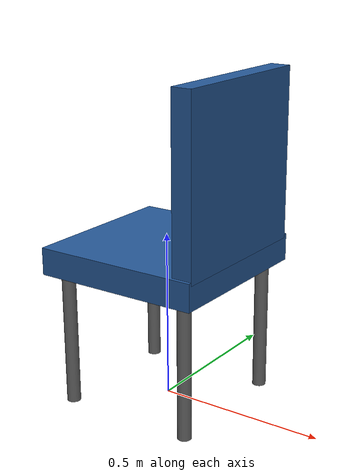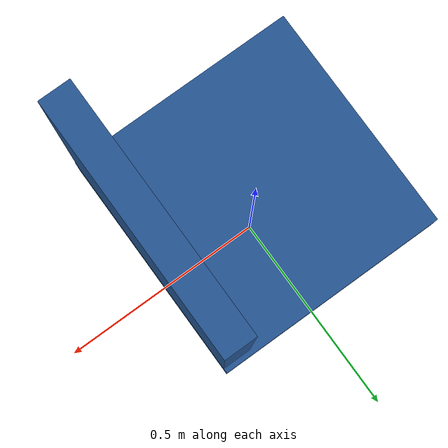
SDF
<?xml version="1.0"?>
<sdf version="1.6">
  <model name="waiting_chair">
    <static>true</static>
    <link name="seat">
      <pose>0 0 0.44 0 0 0</pose>
      <collision name="c"><geometry><box><size>0.5 0.5 0.08</size></box></geometry></collision>
      <visual name="v">
        <geometry><box><size>0.5 0.5 0.08</size></box></geometry>
        <material><ambient>0.15 0.35 0.6 1</ambient><diffuse>0.15 0.35 0.6 1</diffuse></material>
      </visual>
    </link>
    <link name="back">
      <pose>0.22 0 0.72 0 0 0</pose>
      <collision name="c"><geometry><box><size>0.06 0.48 0.5</size></box></geometry></collision>
      <visual name="v">
        <geometry><box><size>0.06 0.48 0.5</size></box></geometry>
        <material><ambient>0.15 0.35 0.6 1</ambient><diffuse>0.15 0.35 0.6 1</diffuse></material>
      </visual>
    </link>
    <link name="leg_fl"><pose>0.2 0.2 0.2 0 0 0</pose>
      <visual name="v"><geometry><cylinder><radius>0.02</radius><length>0.4</length></cylinder></geometry>
        <material><ambient>0.4 0.4 0.4 1</ambient><diffuse>0.4 0.4 0.4 1</diffuse></material></visual>
      <collision name="c"><geometry><cylinder><radius>0.02</radius><length>0.4</length></cylinder></geometry></collision>
    </link>
    <link name="leg_fr"><pose>0.2 -0.2 0.2 0 0 0</pose>
      <visual name="v"><geometry><cylinder><radius>0.02</radius><length>0.4</length></cylinder></geometry>
        <material><ambient>0.4 0.4 0.4 1</ambient><diffuse>0.4 0.4 0.4 1</diffuse></material></visual>
      <collision name="c"><geometry><cylinder><radius>0.02</radius><length>0.4</length></cylinder></geometry></collision>
    </link>
    <link name="leg_bl"><pose>-0.2 0.2 0.2 0 0 0</pose>
      <visual name="v"><geometry><cylinder><radius>0.02</radius><length>0.4</length></cylinder></geometry>
        <material><ambient>0.4 0.4 0.4 1</ambient><diffuse>0.4 0.4 0.4 1</diffuse></material></visual>
      <collision name="c"><geometry><cylinder><radius>0.02</radius><length>0.4</length></cylinder></geometry></collision>
    </link>
    <link name="leg_br"><pose>-0.2 -0.2 0.2 0 0 0</pose>
      <visual name="v"><geometry><cylinder><radius>0.02</radius><length>0.4</length></cylinder></geometry>
        <material><ambient>0.4 0.4 0.4 1</ambient><diffuse>0.4 0.4 0.4 1</diffuse></material></visual>
      <collision name="c"><geometry><cylinder><radius>0.02</radius><length>0.4</length></cylinder></geometry></collision>
    </link>
  </model>
</sdf>
